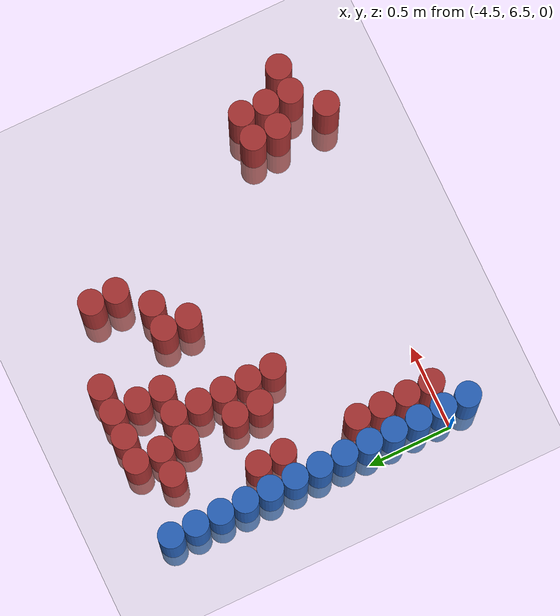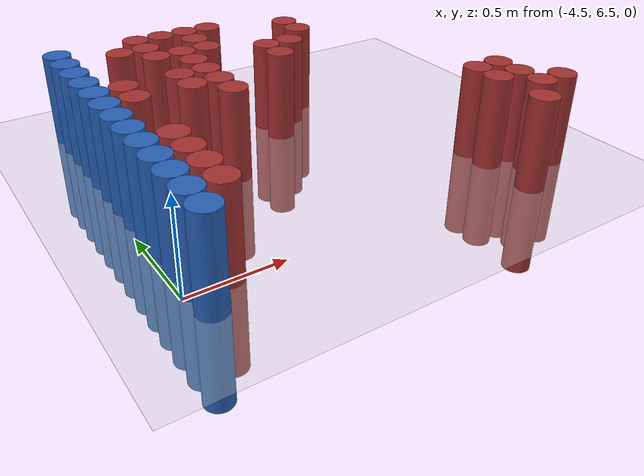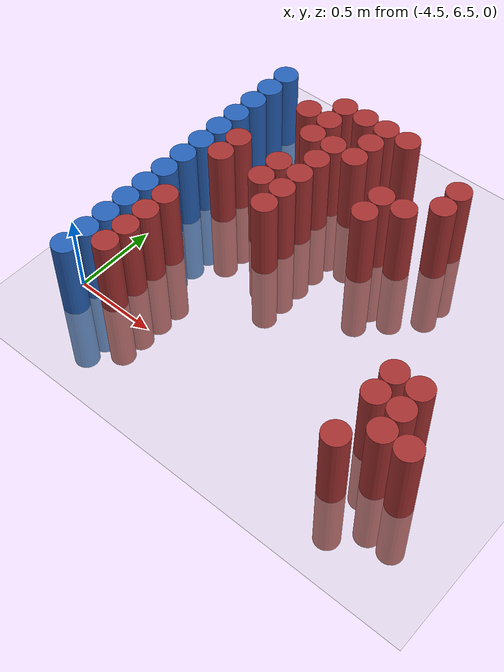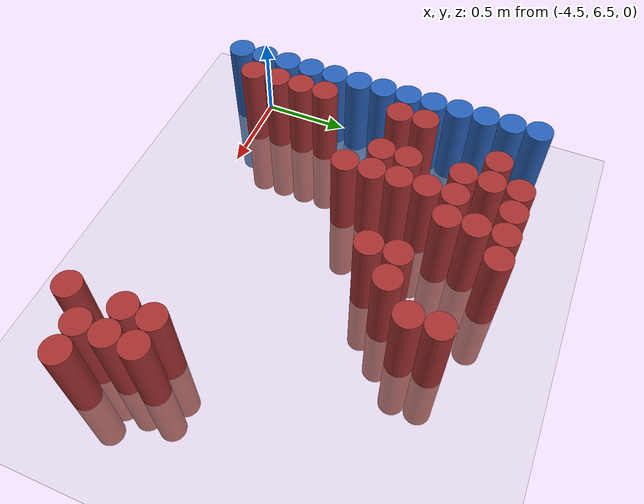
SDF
<sdf version="1.6">
 <world name="default">
  <model name="ground_plane">
   <static>1</static>
   <link name="link">
    <collision name="collision">
     <geometry><plane><normal>0 0 1</normal><size>100 100</size></plane></geometry>
     <surface><friction><ode><mu>100</mu><mu2>50</mu2></ode></friction></surface>
    </collision>
    <visual name="visual">
     <cast_shadows>0</cast_shadows>
     <geometry><plane><normal>0 0 1</normal><size>100 100</size></plane></geometry>
     <material>
      <script><uri>file://media/materials/scripts/gazebo.material</uri><name>Gazebo/Grey</name></script>
     </material>
    </visual>
   </link>
  </model>
  <model name="unit_cylinder_104">
   <static>1</static>
   <pose>-4.425000 6.375000 0.000000 0.000000 0.000000 0.000000</pose>
   <link name="link">
    <inertial>
     <mass>1</mass>
     <inertia><ixx>0.145833</ixx><ixy>0</ixy><ixz>0</ixz><iyy>0.145833</iyy><iyz>0</iyz><izz>0.125</izz></inertia>
    </inertial>
    <collision name="collision">
     <geometry><cylinder><radius>0.075000</radius><length>1</length></cylinder></geometry>
    </collision>
    <visual name="visual">
     <geometry><cylinder><radius>0.075000</radius><length>1</length></cylinder></geometry>
     <material>
      <ambient>0.152000 0.379000 0.720000 1</ambient>
      <diffuse>0.152000 0.379000 0.720000 1</diffuse>
     </material>
     <material>
      <script><name>Gazebo/Grey</name><uri>file://media/materials/scripts/gazebo.material</uri></script>
     </material>
    </visual>
   </link>
  </model>
  <model name="unit_cylinder_105">
   <static>1</static>
   <pose>-4.425000 6.525000 0.000000 0.000000 0.000000 0.000000</pose>
   <link name="link">
    <inertial>
     <mass>1</mass>
     <inertia><ixx>0.145833</ixx><ixy>0</ixy><ixz>0</ixz><iyy>0.145833</iyy><iyz>0</iyz><izz>0.125</izz></inertia>
    </inertial>
    <collision name="collision">
     <geometry><cylinder><radius>0.075000</radius><length>1</length></cylinder></geometry>
    </collision>
    <visual name="visual">
     <geometry><cylinder><radius>0.075000</radius><length>1</length></cylinder></geometry>
     <material>
      <ambient>0.152000 0.379000 0.720000 1</ambient>
      <diffuse>0.152000 0.379000 0.720000 1</diffuse>
     </material>
     <material>
      <script><name>Gazebo/Grey</name><uri>file://media/materials/scripts/gazebo.material</uri></script>
     </material>
    </visual>
   </link>
  </model>
  <model name="unit_cylinder_106">
   <static>1</static>
   <pose>-4.425000 6.675000 0.000000 0.000000 0.000000 0.000000</pose>
   <link name="link">
    <inertial>
     <mass>1</mass>
     <inertia><ixx>0.145833</ixx><ixy>0</ixy><ixz>0</ixz><iyy>0.145833</iyy><iyz>0</iyz><izz>0.125</izz></inertia>
    </inertial>
    <collision name="collision">
     <geometry><cylinder><radius>0.075000</radius><length>1</length></cylinder></geometry>
    </collision>
    <visual name="visual">
     <geometry><cylinder><radius>0.075000</radius><length>1</length></cylinder></geometry>
     <material>
      <ambient>0.152000 0.379000 0.720000 1</ambient>
      <diffuse>0.152000 0.379000 0.720000 1</diffuse>
     </material>
     <material>
      <script><name>Gazebo/Grey</name><uri>file://media/materials/scripts/gazebo.material</uri></script>
     </material>
    </visual>
   </link>
  </model>
  <model name="unit_cylinder_107">
   <static>1</static>
   <pose>-4.425000 6.825000 0.000000 0.000000 0.000000 0.000000</pose>
   <link name="link">
    <inertial>
     <mass>1</mass>
     <inertia><ixx>0.145833</ixx><ixy>0</ixy><ixz>0</ixz><iyy>0.145833</iyy><iyz>0</iyz><izz>0.125</izz></inertia>
    </inertial>
    <collision name="collision">
     <geometry><cylinder><radius>0.075000</radius><length>1</length></cylinder></geometry>
    </collision>
    <visual name="visual">
     <geometry><cylinder><radius>0.075000</radius><length>1</length></cylinder></geometry>
     <material>
      <ambient>0.152000 0.379000 0.720000 1</ambient>
      <diffuse>0.152000 0.379000 0.720000 1</diffuse>
     </material>
     <material>
      <script><name>Gazebo/Grey</name><uri>file://media/materials/scripts/gazebo.material</uri></script>
     </material>
    </visual>
   </link>
  </model>
  <model name="unit_cylinder_108">
   <static>1</static>
   <pose>-4.425000 6.975000 0.000000 0.000000 0.000000 0.000000</pose>
   <link name="link">
    <inertial>
     <mass>1</mass>
     <inertia><ixx>0.145833</ixx><ixy>0</ixy><ixz>0</ixz><iyy>0.145833</iyy><iyz>0</iyz><izz>0.125</izz></inertia>
    </inertial>
    <collision name="collision">
     <geometry><cylinder><radius>0.075000</radius><length>1</length></cylinder></geometry>
    </collision>
    <visual name="visual">
     <geometry><cylinder><radius>0.075000</radius><length>1</length></cylinder></geometry>
     <material>
      <ambient>0.152000 0.379000 0.720000 1</ambient>
      <diffuse>0.152000 0.379000 0.720000 1</diffuse>
     </material>
     <material>
      <script><name>Gazebo/Grey</name><uri>file://media/materials/scripts/gazebo.material</uri></script>
     </material>
    </visual>
   </link>
  </model>
  <model name="unit_cylinder_109">
   <static>1</static>
   <pose>-4.425000 7.125000 0.000000 0.000000 0.000000 0.000000</pose>
   <link name="link">
    <inertial>
     <mass>1</mass>
     <inertia><ixx>0.145833</ixx><ixy>0</ixy><ixz>0</ixz><iyy>0.145833</iyy><iyz>0</iyz><izz>0.125</izz></inertia>
    </inertial>
    <collision name="collision">
     <geometry><cylinder><radius>0.075000</radius><length>1</length></cylinder></geometry>
    </collision>
    <visual name="visual">
     <geometry><cylinder><radius>0.075000</radius><length>1</length></cylinder></geometry>
     <material>
      <ambient>0.152000 0.379000 0.720000 1</ambient>
      <diffuse>0.152000 0.379000 0.720000 1</diffuse>
     </material>
     <material>
      <script><name>Gazebo/Grey</name><uri>file://media/materials/scripts/gazebo.material</uri></script>
     </material>
    </visual>
   </link>
  </model>
  <model name="unit_cylinder_110">
   <static>1</static>
   <pose>-4.425000 7.275000 0.000000 0.000000 0.000000 0.000000</pose>
   <link name="link">
    <inertial>
     <mass>1</mass>
     <inertia><ixx>0.145833</ixx><ixy>0</ixy><ixz>0</ixz><iyy>0.145833</iyy><iyz>0</iyz><izz>0.125</izz></inertia>
    </inertial>
    <collision name="collision">
     <geometry><cylinder><radius>0.075000</radius><length>1</length></cylinder></geometry>
    </collision>
    <visual name="visual">
     <geometry><cylinder><radius>0.075000</radius><length>1</length></cylinder></geometry>
     <material>
      <ambient>0.152000 0.379000 0.720000 1</ambient>
      <diffuse>0.152000 0.379000 0.720000 1</diffuse>
     </material>
     <material>
      <script><name>Gazebo/Grey</name><uri>file://media/materials/scripts/gazebo.material</uri></script>
     </material>
    </visual>
   </link>
  </model>
  <model name="unit_cylinder_111">
   <static>1</static>
   <pose>-4.425000 7.425000 0.000000 0.000000 0.000000 0.000000</pose>
   <link name="link">
    <inertial>
     <mass>1</mass>
     <inertia><ixx>0.145833</ixx><ixy>0</ixy><ixz>0</ixz><iyy>0.145833</iyy><iyz>0</iyz><izz>0.125</izz></inertia>
    </inertial>
    <collision name="collision">
     <geometry><cylinder><radius>0.075000</radius><length>1</length></cylinder></geometry>
    </collision>
    <visual name="visual">
     <geometry><cylinder><radius>0.075000</radius><length>1</length></cylinder></geometry>
     <material>
      <ambient>0.152000 0.379000 0.720000 1</ambient>
      <diffuse>0.152000 0.379000 0.720000 1</diffuse>
     </material>
     <material>
      <script><name>Gazebo/Grey</name><uri>file://media/materials/scripts/gazebo.material</uri></script>
     </material>
    </visual>
   </link>
  </model>
  <model name="unit_cylinder_112">
   <static>1</static>
   <pose>-4.425000 7.575000 0.000000 0.000000 0.000000 0.000000</pose>
   <link name="link">
    <inertial>
     <mass>1</mass>
     <inertia><ixx>0.145833</ixx><ixy>0</ixy><ixz>0</ixz><iyy>0.145833</iyy><iyz>0</iyz><izz>0.125</izz></inertia>
    </inertial>
    <collision name="collision">
     <geometry><cylinder><radius>0.075000</radius><length>1</length></cylinder></geometry>
    </collision>
    <visual name="visual">
     <geometry><cylinder><radius>0.075000</radius><length>1</length></cylinder></geometry>
     <material>
      <ambient>0.152000 0.379000 0.720000 1</ambient>
      <diffuse>0.152000 0.379000 0.720000 1</diffuse>
     </material>
     <material>
      <script><name>Gazebo/Grey</name><uri>file://media/materials/scripts/gazebo.material</uri></script>
     </material>
    </visual>
   </link>
  </model>
  <model name="unit_cylinder_113">
   <static>1</static>
   <pose>-4.425000 7.725000 0.000000 0.000000 0.000000 0.000000</pose>
   <link name="link">
    <inertial>
     <mass>1</mass>
     <inertia><ixx>0.145833</ixx><ixy>0</ixy><ixz>0</ixz><iyy>0.145833</iyy><iyz>0</iyz><izz>0.125</izz></inertia>
    </inertial>
    <collision name="collision">
     <geometry><cylinder><radius>0.075000</radius><length>1</length></cylinder></geometry>
    </collision>
    <visual name="visual">
     <geometry><cylinder><radius>0.075000</radius><length>1</length></cylinder></geometry>
     <material>
      <ambient>0.152000 0.379000 0.720000 1</ambient>
      <diffuse>0.152000 0.379000 0.720000 1</diffuse>
     </material>
     <material>
      <script><name>Gazebo/Grey</name><uri>file://media/materials/scripts/gazebo.material</uri></script>
     </material>
    </visual>
   </link>
  </model>
  <model name="unit_cylinder_114">
   <static>1</static>
   <pose>-4.425000 7.875000 0.000000 0.000000 0.000000 0.000000</pose>
   <link name="link">
    <inertial>
     <mass>1</mass>
     <inertia><ixx>0.145833</ixx><ixy>0</ixy><ixz>0</ixz><iyy>0.145833</iyy><iyz>0</iyz><izz>0.125</izz></inertia>
    </inertial>
    <collision name="collision">
     <geometry><cylinder><radius>0.075000</radius><length>1</length></cylinder></geometry>
    </collision>
    <visual name="visual">
     <geometry><cylinder><radius>0.075000</radius><length>1</length></cylinder></geometry>
     <material>
      <ambient>0.152000 0.379000 0.720000 1</ambient>
      <diffuse>0.152000 0.379000 0.720000 1</diffuse>
     </material>
     <material>
      <script><name>Gazebo/Grey</name><uri>file://media/materials/scripts/gazebo.material</uri></script>
     </material>
    </visual>
   </link>
  </model>
  <model name="unit_cylinder_115">
   <static>1</static>
   <pose>-4.425000 8.025000 0.000000 0.000000 0.000000 0.000000</pose>
   <link name="link">
    <inertial>
     <mass>1</mass>
     <inertia><ixx>0.145833</ixx><ixy>0</ixy><ixz>0</ixz><iyy>0.145833</iyy><iyz>0</iyz><izz>0.125</izz></inertia>
    </inertial>
    <collision name="collision">
     <geometry><cylinder><radius>0.075000</radius><length>1</length></cylinder></geometry>
    </collision>
    <visual name="visual">
     <geometry><cylinder><radius>0.075000</radius><length>1</length></cylinder></geometry>
     <material>
      <ambient>0.152000 0.379000 0.720000 1</ambient>
      <diffuse>0.152000 0.379000 0.720000 1</diffuse>
     </material>
     <material>
      <script><name>Gazebo/Grey</name><uri>file://media/materials/scripts/gazebo.material</uri></script>
     </material>
    </visual>
   </link>
  </model>
  <model name="unit_cylinder_116">
   <static>1</static>
   <pose>-4.425000 8.175000 0.000000 0.000000 0.000000 0.000000</pose>
   <link name="link">
    <inertial>
     <mass>1</mass>
     <inertia><ixx>0.145833</ixx><ixy>0</ixy><ixz>0</ixz><iyy>0.145833</iyy><iyz>0</iyz><izz>0.125</izz></inertia>
    </inertial>
    <collision name="collision">
     <geometry><cylinder><radius>0.075000</radius><length>1</length></cylinder></geometry>
    </collision>
    <visual name="visual">
     <geometry><cylinder><radius>0.075000</radius><length>1</length></cylinder></geometry>
     <material>
      <ambient>0.152000 0.379000 0.720000 1</ambient>
      <diffuse>0.152000 0.379000 0.720000 1</diffuse>
     </material>
     <material>
      <script><name>Gazebo/Grey</name><uri>file://media/materials/scripts/gazebo.material</uri></script>
     </material>
    </visual>
   </link>
  </model>
  <model name="unit_cylinder_129">
   <static>1</static>
   <pose>-4.275000 6.525000 0.000000 0.000000 0.000000 0.000000</pose>
   <link name="link">
    <inertial>
     <mass>1</mass>
     <inertia><ixx>0.145833</ixx><ixy>0</ixy><ixz>0</ixz><iyy>0.145833</iyy><iyz>0</iyz><izz>0.125</izz></inertia>
    </inertial>
    <collision name="collision">
     <geometry><cylinder><radius>0.075000</radius><length>1</length></cylinder></geometry>
    </collision>
    <visual name="visual">
     <geometry><cylinder><radius>0.075000</radius><length>1</length></cylinder></geometry>
     <material>
      <ambient>0.648000 0.192000 0.192000 1</ambient>
      <diffuse>0.648000 0.192000 0.192000 1</diffuse>
     </material>
     <material>
      <script><name>Gazebo/Grey</name><uri>file://media/materials/scripts/gazebo.material</uri></script>
     </material>
    </visual>
   </link>
  </model>
  <model name="unit_cylinder_130">
   <static>1</static>
   <pose>-4.275000 6.675000 0.000000 0.000000 0.000000 0.000000</pose>
   <link name="link">
    <inertial>
     <mass>1</mass>
     <inertia><ixx>0.145833</ixx><ixy>0</ixy><ixz>0</ixz><iyy>0.145833</iyy><iyz>0</iyz><izz>0.125</izz></inertia>
    </inertial>
    <collision name="collision">
     <geometry><cylinder><radius>0.075000</radius><length>1</length></cylinder></geometry>
    </collision>
    <visual name="visual">
     <geometry><cylinder><radius>0.075000</radius><length>1</length></cylinder></geometry>
     <material>
      <ambient>0.648000 0.192000 0.192000 1</ambient>
      <diffuse>0.648000 0.192000 0.192000 1</diffuse>
     </material>
     <material>
      <script><name>Gazebo/Grey</name><uri>file://media/materials/scripts/gazebo.material</uri></script>
     </material>
    </visual>
   </link>
  </model>
  <model name="unit_cylinder_131">
   <static>1</static>
   <pose>-4.275000 6.825000 0.000000 0.000000 0.000000 0.000000</pose>
   <link name="link">
    <inertial>
     <mass>1</mass>
     <inertia><ixx>0.145833</ixx><ixy>0</ixy><ixz>0</ixz><iyy>0.145833</iyy><iyz>0</iyz><izz>0.125</izz></inertia>
    </inertial>
    <collision name="collision">
     <geometry><cylinder><radius>0.075000</radius><length>1</length></cylinder></geometry>
    </collision>
    <visual name="visual">
     <geometry><cylinder><radius>0.075000</radius><length>1</length></cylinder></geometry>
     <material>
      <ambient>0.648000 0.192000 0.192000 1</ambient>
      <diffuse>0.648000 0.192000 0.192000 1</diffuse>
     </material>
     <material>
      <script><name>Gazebo/Grey</name><uri>file://media/materials/scripts/gazebo.material</uri></script>
     </material>
    </visual>
   </link>
  </model>
  <model name="unit_cylinder_132">
   <static>1</static>
   <pose>-4.275000 6.975000 0.000000 0.000000 0.000000 0.000000</pose>
   <link name="link">
    <inertial>
     <mass>1</mass>
     <inertia><ixx>0.145833</ixx><ixy>0</ixy><ixz>0</ixz><iyy>0.145833</iyy><iyz>0</iyz><izz>0.125</izz></inertia>
    </inertial>
    <collision name="collision">
     <geometry><cylinder><radius>0.075000</radius><length>1</length></cylinder></geometry>
    </collision>
    <visual name="visual">
     <geometry><cylinder><radius>0.075000</radius><length>1</length></cylinder></geometry>
     <material>
      <ambient>0.648000 0.192000 0.192000 1</ambient>
      <diffuse>0.648000 0.192000 0.192000 1</diffuse>
     </material>
     <material>
      <script><name>Gazebo/Grey</name><uri>file://media/materials/scripts/gazebo.material</uri></script>
     </material>
    </visual>
   </link>
  </model>
  <model name="unit_cylinder_133">
   <static>1</static>
   <pose>-4.275000 7.425000 0.000000 0.000000 0.000000 0.000000</pose>
   <link name="link">
    <inertial>
     <mass>1</mass>
     <inertia><ixx>0.145833</ixx><ixy>0</ixy><ixz>0</ixz><iyy>0.145833</iyy><iyz>0</iyz><izz>0.125</izz></inertia>
    </inertial>
    <collision name="collision">
     <geometry><cylinder><radius>0.075000</radius><length>1</length></cylinder></geometry>
    </collision>
    <visual name="visual">
     <geometry><cylinder><radius>0.075000</radius><length>1</length></cylinder></geometry>
     <material>
      <ambient>0.648000 0.192000 0.192000 1</ambient>
      <diffuse>0.648000 0.192000 0.192000 1</diffuse>
     </material>
     <material>
      <script><name>Gazebo/Grey</name><uri>file://media/materials/scripts/gazebo.material</uri></script>
     </material>
    </visual>
   </link>
  </model>
  <model name="unit_cylinder_134">
   <static>1</static>
   <pose>-4.275000 7.575000 0.000000 0.000000 0.000000 0.000000</pose>
   <link name="link">
    <inertial>
     <mass>1</mass>
     <inertia><ixx>0.145833</ixx><ixy>0</ixy><ixz>0</ixz><iyy>0.145833</iyy><iyz>0</iyz><izz>0.125</izz></inertia>
    </inertial>
    <collision name="collision">
     <geometry><cylinder><radius>0.075000</radius><length>1</length></cylinder></geometry>
    </collision>
    <visual name="visual">
     <geometry><cylinder><radius>0.075000</radius><length>1</length></cylinder></geometry>
     <material>
      <ambient>0.648000 0.192000 0.192000 1</ambient>
      <diffuse>0.648000 0.192000 0.192000 1</diffuse>
     </material>
     <material>
      <script><name>Gazebo/Grey</name><uri>file://media/materials/scripts/gazebo.material</uri></script>
     </material>
    </visual>
   </link>
  </model>
  <model name="unit_cylinder_140">
   <static>1</static>
   <pose>-4.125000 8.025000 0.000000 0.000000 0.000000 0.000000</pose>
   <link name="link">
    <inertial>
     <mass>1</mass>
     <inertia><ixx>0.145833</ixx><ixy>0</ixy><ixz>0</ixz><iyy>0.145833</iyy><iyz>0</iyz><izz>0.125</izz></inertia>
    </inertial>
    <collision name="collision">
     <geometry><cylinder><radius>0.075000</radius><length>1</length></cylinder></geometry>
    </collision>
    <visual name="visual">
     <geometry><cylinder><radius>0.075000</radius><length>1</length></cylinder></geometry>
     <material>
      <ambient>0.648000 0.192000 0.192000 1</ambient>
      <diffuse>0.648000 0.192000 0.192000 1</diffuse>
     </material>
     <material>
      <script><name>Gazebo/Grey</name><uri>file://media/materials/scripts/gazebo.material</uri></script>
     </material>
    </visual>
   </link>
  </model>
  <model name="unit_cylinder_143">
   <static>1</static>
   <pose>-3.975000 7.425000 0.000000 0.000000 0.000000 0.000000</pose>
   <link name="link">
    <inertial>
     <mass>1</mass>
     <inertia><ixx>0.145833</ixx><ixy>0</ixy><ixz>0</ixz><iyy>0.145833</iyy><iyz>0</iyz><izz>0.125</izz></inertia>
    </inertial>
    <collision name="collision">
     <geometry><cylinder><radius>0.075000</radius><length>1</length></cylinder></geometry>
    </collision>
    <visual name="visual">
     <geometry><cylinder><radius>0.075000</radius><length>1</length></cylinder></geometry>
     <material>
      <ambient>0.648000 0.192000 0.192000 1</ambient>
      <diffuse>0.648000 0.192000 0.192000 1</diffuse>
     </material>
     <material>
      <script><name>Gazebo/Grey</name><uri>file://media/materials/scripts/gazebo.material</uri></script>
     </material>
    </visual>
   </link>
  </model>
  <model name="unit_cylinder_144">
   <static>1</static>
   <pose>-3.975000 7.575000 0.000000 0.000000 0.000000 0.000000</pose>
   <link name="link">
    <inertial>
     <mass>1</mass>
     <inertia><ixx>0.145833</ixx><ixy>0</ixy><ixz>0</ixz><iyy>0.145833</iyy><iyz>0</iyz><izz>0.125</izz></inertia>
    </inertial>
    <collision name="collision">
     <geometry><cylinder><radius>0.075000</radius><length>1</length></cylinder></geometry>
    </collision>
    <visual name="visual">
     <geometry><cylinder><radius>0.075000</radius><length>1</length></cylinder></geometry>
     <material>
      <ambient>0.648000 0.192000 0.192000 1</ambient>
      <diffuse>0.648000 0.192000 0.192000 1</diffuse>
     </material>
     <material>
      <script><name>Gazebo/Grey</name><uri>file://media/materials/scripts/gazebo.material</uri></script>
     </material>
    </visual>
   </link>
  </model>
  <model name="unit_cylinder_145">
   <static>1</static>
   <pose>-3.975000 7.875000 0.000000 0.000000 0.000000 0.000000</pose>
   <link name="link">
    <inertial>
     <mass>1</mass>
     <inertia><ixx>0.145833</ixx><ixy>0</ixy><ixz>0</ixz><iyy>0.145833</iyy><iyz>0</iyz><izz>0.125</izz></inertia>
    </inertial>
    <collision name="collision">
     <geometry><cylinder><radius>0.075000</radius><length>1</length></cylinder></geometry>
    </collision>
    <visual name="visual">
     <geometry><cylinder><radius>0.075000</radius><length>1</length></cylinder></geometry>
     <material>
      <ambient>0.648000 0.192000 0.192000 1</ambient>
      <diffuse>0.648000 0.192000 0.192000 1</diffuse>
     </material>
     <material>
      <script><name>Gazebo/Grey</name><uri>file://media/materials/scripts/gazebo.material</uri></script>
     </material>
    </visual>
   </link>
  </model>
  <model name="unit_cylinder_146">
   <static>1</static>
   <pose>-3.975000 8.025000 0.000000 0.000000 0.000000 0.000000</pose>
   <link name="link">
    <inertial>
     <mass>1</mass>
     <inertia><ixx>0.145833</ixx><ixy>0</ixy><ixz>0</ixz><iyy>0.145833</iyy><iyz>0</iyz><izz>0.125</izz></inertia>
    </inertial>
    <collision name="collision">
     <geometry><cylinder><radius>0.075000</radius><length>1</length></cylinder></geometry>
    </collision>
    <visual name="visual">
     <geometry><cylinder><radius>0.075000</radius><length>1</length></cylinder></geometry>
     <material>
      <ambient>0.648000 0.192000 0.192000 1</ambient>
      <diffuse>0.648000 0.192000 0.192000 1</diffuse>
     </material>
     <material>
      <script><name>Gazebo/Grey</name><uri>file://media/materials/scripts/gazebo.material</uri></script>
     </material>
    </visual>
   </link>
  </model>
  <model name="unit_cylinder_147">
   <static>1</static>
   <pose>-3.975000 8.175000 0.000000 0.000000 0.000000 0.000000</pose>
   <link name="link">
    <inertial>
     <mass>1</mass>
     <inertia><ixx>0.145833</ixx><ixy>0</ixy><ixz>0</ixz><iyy>0.145833</iyy><iyz>0</iyz><izz>0.125</izz></inertia>
    </inertial>
    <collision name="collision">
     <geometry><cylinder><radius>0.075000</radius><length>1</length></cylinder></geometry>
    </collision>
    <visual name="visual">
     <geometry><cylinder><radius>0.075000</radius><length>1</length></cylinder></geometry>
     <material>
      <ambient>0.648000 0.192000 0.192000 1</ambient>
      <diffuse>0.648000 0.192000 0.192000 1</diffuse>
     </material>
     <material>
      <script><name>Gazebo/Grey</name><uri>file://media/materials/scripts/gazebo.material</uri></script>
     </material>
    </visual>
   </link>
  </model>
  <model name="unit_cylinder_153">
   <static>1</static>
   <pose>-3.825000 7.275000 0.000000 0.000000 0.000000 0.000000</pose>
   <link name="link">
    <inertial>
     <mass>1</mass>
     <inertia><ixx>0.145833</ixx><ixy>0</ixy><ixz>0</ixz><iyy>0.145833</iyy><iyz>0</iyz><izz>0.125</izz></inertia>
    </inertial>
    <collision name="collision">
     <geometry><cylinder><radius>0.075000</radius><length>1</length></cylinder></geometry>
    </collision>
    <visual name="visual">
     <geometry><cylinder><radius>0.075000</radius><length>1</length></cylinder></geometry>
     <material>
      <ambient>0.648000 0.192000 0.192000 1</ambient>
      <diffuse>0.648000 0.192000 0.192000 1</diffuse>
     </material>
     <material>
      <script><name>Gazebo/Grey</name><uri>file://media/materials/scripts/gazebo.material</uri></script>
     </material>
    </visual>
   </link>
  </model>
  <model name="unit_cylinder_154">
   <static>1</static>
   <pose>-3.825000 7.425000 0.000000 0.000000 0.000000 0.000000</pose>
   <link name="link">
    <inertial>
     <mass>1</mass>
     <inertia><ixx>0.145833</ixx><ixy>0</ixy><ixz>0</ixz><iyy>0.145833</iyy><iyz>0</iyz><izz>0.125</izz></inertia>
    </inertial>
    <collision name="collision">
     <geometry><cylinder><radius>0.075000</radius><length>1</length></cylinder></geometry>
    </collision>
    <visual name="visual">
     <geometry><cylinder><radius>0.075000</radius><length>1</length></cylinder></geometry>
     <material>
      <ambient>0.648000 0.192000 0.192000 1</ambient>
      <diffuse>0.648000 0.192000 0.192000 1</diffuse>
     </material>
     <material>
      <script><name>Gazebo/Grey</name><uri>file://media/materials/scripts/gazebo.material</uri></script>
     </material>
    </visual>
   </link>
  </model>
  <model name="unit_cylinder_155">
   <static>1</static>
   <pose>-3.825000 7.575000 0.000000 0.000000 0.000000 0.000000</pose>
   <link name="link">
    <inertial>
     <mass>1</mass>
     <inertia><ixx>0.145833</ixx><ixy>0</ixy><ixz>0</ixz><iyy>0.145833</iyy><iyz>0</iyz><izz>0.125</izz></inertia>
    </inertial>
    <collision name="collision">
     <geometry><cylinder><radius>0.075000</radius><length>1</length></cylinder></geometry>
    </collision>
    <visual name="visual">
     <geometry><cylinder><radius>0.075000</radius><length>1</length></cylinder></geometry>
     <material>
      <ambient>0.648000 0.192000 0.192000 1</ambient>
      <diffuse>0.648000 0.192000 0.192000 1</diffuse>
     </material>
     <material>
      <script><name>Gazebo/Grey</name><uri>file://media/materials/scripts/gazebo.material</uri></script>
     </material>
    </visual>
   </link>
  </model>
  <model name="unit_cylinder_156">
   <static>1</static>
   <pose>-3.825000 7.725000 0.000000 0.000000 0.000000 0.000000</pose>
   <link name="link">
    <inertial>
     <mass>1</mass>
     <inertia><ixx>0.145833</ixx><ixy>0</ixy><ixz>0</ixz><iyy>0.145833</iyy><iyz>0</iyz><izz>0.125</izz></inertia>
    </inertial>
    <collision name="collision">
     <geometry><cylinder><radius>0.075000</radius><length>1</length></cylinder></geometry>
    </collision>
    <visual name="visual">
     <geometry><cylinder><radius>0.075000</radius><length>1</length></cylinder></geometry>
     <material>
      <ambient>0.648000 0.192000 0.192000 1</ambient>
      <diffuse>0.648000 0.192000 0.192000 1</diffuse>
     </material>
     <material>
      <script><name>Gazebo/Grey</name><uri>file://media/materials/scripts/gazebo.material</uri></script>
     </material>
    </visual>
   </link>
  </model>
  <model name="unit_cylinder_157">
   <static>1</static>
   <pose>-3.825000 7.875000 0.000000 0.000000 0.000000 0.000000</pose>
   <link name="link">
    <inertial>
     <mass>1</mass>
     <inertia><ixx>0.145833</ixx><ixy>0</ixy><ixz>0</ixz><iyy>0.145833</iyy><iyz>0</iyz><izz>0.125</izz></inertia>
    </inertial>
    <collision name="collision">
     <geometry><cylinder><radius>0.075000</radius><length>1</length></cylinder></geometry>
    </collision>
    <visual name="visual">
     <geometry><cylinder><radius>0.075000</radius><length>1</length></cylinder></geometry>
     <material>
      <ambient>0.648000 0.192000 0.192000 1</ambient>
      <diffuse>0.648000 0.192000 0.192000 1</diffuse>
     </material>
     <material>
      <script><name>Gazebo/Grey</name><uri>file://media/materials/scripts/gazebo.material</uri></script>
     </material>
    </visual>
   </link>
  </model>
  <model name="unit_cylinder_158">
   <static>1</static>
   <pose>-3.825000 8.175000 0.000000 0.000000 0.000000 0.000000</pose>
   <link name="link">
    <inertial>
     <mass>1</mass>
     <inertia><ixx>0.145833</ixx><ixy>0</ixy><ixz>0</ixz><iyy>0.145833</iyy><iyz>0</iyz><izz>0.125</izz></inertia>
    </inertial>
    <collision name="collision">
     <geometry><cylinder><radius>0.075000</radius><length>1</length></cylinder></geometry>
    </collision>
    <visual name="visual">
     <geometry><cylinder><radius>0.075000</radius><length>1</length></cylinder></geometry>
     <material>
      <ambient>0.648000 0.192000 0.192000 1</ambient>
      <diffuse>0.648000 0.192000 0.192000 1</diffuse>
     </material>
     <material>
      <script><name>Gazebo/Grey</name><uri>file://media/materials/scripts/gazebo.material</uri></script>
     </material>
    </visual>
   </link>
  </model>
  <model name="unit_cylinder_160">
   <static>1</static>
   <pose>-3.675000 7.875000 0.000000 0.000000 0.000000 0.000000</pose>
   <link name="link">
    <inertial>
     <mass>1</mass>
     <inertia><ixx>0.145833</ixx><ixy>0</ixy><ixz>0</ixz><iyy>0.145833</iyy><iyz>0</iyz><izz>0.125</izz></inertia>
    </inertial>
    <collision name="collision">
     <geometry><cylinder><radius>0.075000</radius><length>1</length></cylinder></geometry>
    </collision>
    <visual name="visual">
     <geometry><cylinder><radius>0.075000</radius><length>1</length></cylinder></geometry>
     <material>
      <ambient>0.648000 0.192000 0.192000 1</ambient>
      <diffuse>0.648000 0.192000 0.192000 1</diffuse>
     </material>
     <material>
      <script><name>Gazebo/Grey</name><uri>file://media/materials/scripts/gazebo.material</uri></script>
     </material>
    </visual>
   </link>
  </model>
  <model name="unit_cylinder_161">
   <static>1</static>
   <pose>-3.675000 8.025000 0.000000 0.000000 0.000000 0.000000</pose>
   <link name="link">
    <inertial>
     <mass>1</mass>
     <inertia><ixx>0.145833</ixx><ixy>0</ixy><ixz>0</ixz><iyy>0.145833</iyy><iyz>0</iyz><izz>0.125</izz></inertia>
    </inertial>
    <collision name="collision">
     <geometry><cylinder><radius>0.075000</radius><length>1</length></cylinder></geometry>
    </collision>
    <visual name="visual">
     <geometry><cylinder><radius>0.075000</radius><length>1</length></cylinder></geometry>
     <material>
      <ambient>0.648000 0.192000 0.192000 1</ambient>
      <diffuse>0.648000 0.192000 0.192000 1</diffuse>
     </material>
     <material>
      <script><name>Gazebo/Grey</name><uri>file://media/materials/scripts/gazebo.material</uri></script>
     </material>
    </visual>
   </link>
  </model>
  <model name="unit_cylinder_162">
   <static>1</static>
   <pose>-3.675000 8.175000 0.000000 0.000000 0.000000 0.000000</pose>
   <link name="link">
    <inertial>
     <mass>1</mass>
     <inertia><ixx>0.145833</ixx><ixy>0</ixy><ixz>0</ixz><iyy>0.145833</iyy><iyz>0</iyz><izz>0.125</izz></inertia>
    </inertial>
    <collision name="collision">
     <geometry><cylinder><radius>0.075000</radius><length>1</length></cylinder></geometry>
    </collision>
    <visual name="visual">
     <geometry><cylinder><radius>0.075000</radius><length>1</length></cylinder></geometry>
     <material>
      <ambient>0.648000 0.192000 0.192000 1</ambient>
      <diffuse>0.648000 0.192000 0.192000 1</diffuse>
     </material>
     <material>
      <script><name>Gazebo/Grey</name><uri>file://media/materials/scripts/gazebo.material</uri></script>
     </material>
    </visual>
   </link>
  </model>
  <model name="unit_cylinder_165">
   <static>1</static>
   <pose>-3.525000 8.175000 0.000000 0.000000 0.000000 0.000000</pose>
   <link name="link">
    <inertial>
     <mass>1</mass>
     <inertia><ixx>0.145833</ixx><ixy>0</ixy><ixz>0</ixz><iyy>0.145833</iyy><iyz>0</iyz><izz>0.125</izz></inertia>
    </inertial>
    <collision name="collision">
     <geometry><cylinder><radius>0.075000</radius><length>1</length></cylinder></geometry>
    </collision>
    <visual name="visual">
     <geometry><cylinder><radius>0.075000</radius><length>1</length></cylinder></geometry>
     <material>
      <ambient>0.648000 0.192000 0.192000 1</ambient>
      <diffuse>0.648000 0.192000 0.192000 1</diffuse>
     </material>
     <material>
      <script><name>Gazebo/Grey</name><uri>file://media/materials/scripts/gazebo.material</uri></script>
     </material>
    </visual>
   </link>
  </model>
  <model name="unit_cylinder_173">
   <static>1</static>
   <pose>-3.375000 7.575000 0.000000 0.000000 0.000000 0.000000</pose>
   <link name="link">
    <inertial>
     <mass>1</mass>
     <inertia><ixx>0.145833</ixx><ixy>0</ixy><ixz>0</ixz><iyy>0.145833</iyy><iyz>0</iyz><izz>0.125</izz></inertia>
    </inertial>
    <collision name="collision">
     <geometry><cylinder><radius>0.075000</radius><length>1</length></cylinder></geometry>
    </collision>
    <visual name="visual">
     <geometry><cylinder><radius>0.075000</radius><length>1</length></cylinder></geometry>
     <material>
      <ambient>0.648000 0.192000 0.192000 1</ambient>
      <diffuse>0.648000 0.192000 0.192000 1</diffuse>
     </material>
     <material>
      <script><name>Gazebo/Grey</name><uri>file://media/materials/scripts/gazebo.material</uri></script>
     </material>
    </visual>
   </link>
  </model>
  <model name="unit_cylinder_174">
   <static>1</static>
   <pose>-3.375000 7.725000 0.000000 0.000000 0.000000 0.000000</pose>
   <link name="link">
    <inertial>
     <mass>1</mass>
     <inertia><ixx>0.145833</ixx><ixy>0</ixy><ixz>0</ixz><iyy>0.145833</iyy><iyz>0</iyz><izz>0.125</izz></inertia>
    </inertial>
    <collision name="collision">
     <geometry><cylinder><radius>0.075000</radius><length>1</length></cylinder></geometry>
    </collision>
    <visual name="visual">
     <geometry><cylinder><radius>0.075000</radius><length>1</length></cylinder></geometry>
     <material>
      <ambient>0.648000 0.192000 0.192000 1</ambient>
      <diffuse>0.648000 0.192000 0.192000 1</diffuse>
     </material>
     <material>
      <script><name>Gazebo/Grey</name><uri>file://media/materials/scripts/gazebo.material</uri></script>
     </material>
    </visual>
   </link>
  </model>
  <model name="unit_cylinder_187">
   <static>1</static>
   <pose>-3.225000 7.725000 0.000000 0.000000 0.000000 0.000000</pose>
   <link name="link">
    <inertial>
     <mass>1</mass>
     <inertia><ixx>0.145833</ixx><ixy>0</ixy><ixz>0</ixz><iyy>0.145833</iyy><iyz>0</iyz><izz>0.125</izz></inertia>
    </inertial>
    <collision name="collision">
     <geometry><cylinder><radius>0.075000</radius><length>1</length></cylinder></geometry>
    </collision>
    <visual name="visual">
     <geometry><cylinder><radius>0.075000</radius><length>1</length></cylinder></geometry>
     <material>
      <ambient>0.648000 0.192000 0.192000 1</ambient>
      <diffuse>0.648000 0.192000 0.192000 1</diffuse>
     </material>
     <material>
      <script><name>Gazebo/Grey</name><uri>file://media/materials/scripts/gazebo.material</uri></script>
     </material>
    </visual>
   </link>
  </model>
  <model name="unit_cylinder_194">
   <static>1</static>
   <pose>-3.075000 7.875000 0.000000 0.000000 0.000000 0.000000</pose>
   <link name="link">
    <inertial>
     <mass>1</mass>
     <inertia><ixx>0.145833</ixx><ixy>0</ixy><ixz>0</ixz><iyy>0.145833</iyy><iyz>0</iyz><izz>0.125</izz></inertia>
    </inertial>
    <collision name="collision">
     <geometry><cylinder><radius>0.075000</radius><length>1</length></cylinder></geometry>
    </collision>
    <visual name="visual">
     <geometry><cylinder><radius>0.075000</radius><length>1</length></cylinder></geometry>
     <material>
      <ambient>0.648000 0.192000 0.192000 1</ambient>
      <diffuse>0.648000 0.192000 0.192000 1</diffuse>
     </material>
     <material>
      <script><name>Gazebo/Grey</name><uri>file://media/materials/scripts/gazebo.material</uri></script>
     </material>
    </visual>
   </link>
  </model>
  <model name="unit_cylinder_195">
   <static>1</static>
   <pose>-3.075000 8.025000 0.000000 0.000000 0.000000 0.000000</pose>
   <link name="link">
    <inertial>
     <mass>1</mass>
     <inertia><ixx>0.145833</ixx><ixy>0</ixy><ixz>0</ixz><iyy>0.145833</iyy><iyz>0</iyz><izz>0.125</izz></inertia>
    </inertial>
    <collision name="collision">
     <geometry><cylinder><radius>0.075000</radius><length>1</length></cylinder></geometry>
    </collision>
    <visual name="visual">
     <geometry><cylinder><radius>0.075000</radius><length>1</length></cylinder></geometry>
     <material>
      <ambient>0.648000 0.192000 0.192000 1</ambient>
      <diffuse>0.648000 0.192000 0.192000 1</diffuse>
     </material>
     <material>
      <script><name>Gazebo/Grey</name><uri>file://media/materials/scripts/gazebo.material</uri></script>
     </material>
    </visual>
   </link>
  </model>
  <model name="unit_cylinder_217">
   <static>1</static>
   <pose>-2.625000 6.375000 0.000000 0.000000 0.000000 0.000000</pose>
   <link name="link">
    <inertial>
     <mass>1</mass>
     <inertia><ixx>0.145833</ixx><ixy>0</ixy><ixz>0</ixz><iyy>0.145833</iyy><iyz>0</iyz><izz>0.125</izz></inertia>
    </inertial>
    <collision name="collision">
     <geometry><cylinder><radius>0.075000</radius><length>1</length></cylinder></geometry>
    </collision>
    <visual name="visual">
     <geometry><cylinder><radius>0.075000</radius><length>1</length></cylinder></geometry>
     <material>
      <ambient>0.648000 0.192000 0.192000 1</ambient>
      <diffuse>0.648000 0.192000 0.192000 1</diffuse>
     </material>
     <material>
      <script><name>Gazebo/Grey</name><uri>file://media/materials/scripts/gazebo.material</uri></script>
     </material>
    </visual>
   </link>
  </model>
  <model name="unit_cylinder_218">
   <static>1</static>
   <pose>-2.625000 6.675000 0.000000 0.000000 0.000000 0.000000</pose>
   <link name="link">
    <inertial>
     <mass>1</mass>
     <inertia><ixx>0.145833</ixx><ixy>0</ixy><ixz>0</ixz><iyy>0.145833</iyy><iyz>0</iyz><izz>0.125</izz></inertia>
    </inertial>
    <collision name="collision">
     <geometry><cylinder><radius>0.075000</radius><length>1</length></cylinder></geometry>
    </collision>
    <visual name="visual">
     <geometry><cylinder><radius>0.075000</radius><length>1</length></cylinder></geometry>
     <material>
      <ambient>0.648000 0.192000 0.192000 1</ambient>
      <diffuse>0.648000 0.192000 0.192000 1</diffuse>
     </material>
     <material>
      <script><name>Gazebo/Grey</name><uri>file://media/materials/scripts/gazebo.material</uri></script>
     </material>
    </visual>
   </link>
  </model>
  <model name="unit_cylinder_219">
   <static>1</static>
   <pose>-2.625000 6.825000 0.000000 0.000000 0.000000 0.000000</pose>
   <link name="link">
    <inertial>
     <mass>1</mass>
     <inertia><ixx>0.145833</ixx><ixy>0</ixy><ixz>0</ixz><iyy>0.145833</iyy><iyz>0</iyz><izz>0.125</izz></inertia>
    </inertial>
    <collision name="collision">
     <geometry><cylinder><radius>0.075000</radius><length>1</length></cylinder></geometry>
    </collision>
    <visual name="visual">
     <geometry><cylinder><radius>0.075000</radius><length>1</length></cylinder></geometry>
     <material>
      <ambient>0.648000 0.192000 0.192000 1</ambient>
      <diffuse>0.648000 0.192000 0.192000 1</diffuse>
     </material>
     <material>
      <script><name>Gazebo/Grey</name><uri>file://media/materials/scripts/gazebo.material</uri></script>
     </material>
    </visual>
   </link>
  </model>
  <model name="unit_cylinder_220">
   <static>1</static>
   <pose>-2.475000 6.525000 0.000000 0.000000 0.000000 0.000000</pose>
   <link name="link">
    <inertial>
     <mass>1</mass>
     <inertia><ixx>0.145833</ixx><ixy>0</ixy><ixz>0</ixz><iyy>0.145833</iyy><iyz>0</iyz><izz>0.125</izz></inertia>
    </inertial>
    <collision name="collision">
     <geometry><cylinder><radius>0.075000</radius><length>1</length></cylinder></geometry>
    </collision>
    <visual name="visual">
     <geometry><cylinder><radius>0.075000</radius><length>1</length></cylinder></geometry>
     <material>
      <ambient>0.648000 0.192000 0.192000 1</ambient>
      <diffuse>0.648000 0.192000 0.192000 1</diffuse>
     </material>
     <material>
      <script><name>Gazebo/Grey</name><uri>file://media/materials/scripts/gazebo.material</uri></script>
     </material>
    </visual>
   </link>
  </model>
  <model name="unit_cylinder_221">
   <static>1</static>
   <pose>-2.475000 6.675000 0.000000 0.000000 0.000000 0.000000</pose>
   <link name="link">
    <inertial>
     <mass>1</mass>
     <inertia><ixx>0.145833</ixx><ixy>0</ixy><ixz>0</ixz><iyy>0.145833</iyy><iyz>0</iyz><izz>0.125</izz></inertia>
    </inertial>
    <collision name="collision">
     <geometry><cylinder><radius>0.075000</radius><length>1</length></cylinder></geometry>
    </collision>
    <visual name="visual">
     <geometry><cylinder><radius>0.075000</radius><length>1</length></cylinder></geometry>
     <material>
      <ambient>0.648000 0.192000 0.192000 1</ambient>
      <diffuse>0.648000 0.192000 0.192000 1</diffuse>
     </material>
     <material>
      <script><name>Gazebo/Grey</name><uri>file://media/materials/scripts/gazebo.material</uri></script>
     </material>
    </visual>
   </link>
  </model>
  <model name="unit_cylinder_222">
   <static>1</static>
   <pose>-2.475000 6.825000 0.000000 0.000000 0.000000 0.000000</pose>
   <link name="link">
    <inertial>
     <mass>1</mass>
     <inertia><ixx>0.145833</ixx><ixy>0</ixy><ixz>0</ixz><iyy>0.145833</iyy><iyz>0</iyz><izz>0.125</izz></inertia>
    </inertial>
    <collision name="collision">
     <geometry><cylinder><radius>0.075000</radius><length>1</length></cylinder></geometry>
    </collision>
    <visual name="visual">
     <geometry><cylinder><radius>0.075000</radius><length>1</length></cylinder></geometry>
     <material>
      <ambient>0.648000 0.192000 0.192000 1</ambient>
      <diffuse>0.648000 0.192000 0.192000 1</diffuse>
     </material>
     <material>
      <script><name>Gazebo/Grey</name><uri>file://media/materials/scripts/gazebo.material</uri></script>
     </material>
    </visual>
   </link>
  </model>
  <model name="unit_cylinder_223">
   <static>1</static>
   <pose>-2.325000 6.525000 0.000000 0.000000 0.000000 0.000000</pose>
   <link name="link">
    <inertial>
     <mass>1</mass>
     <inertia><ixx>0.145833</ixx><ixy>0</ixy><ixz>0</ixz><iyy>0.145833</iyy><iyz>0</iyz><izz>0.125</izz></inertia>
    </inertial>
    <collision name="collision">
     <geometry><cylinder><radius>0.075000</radius><length>1</length></cylinder></geometry>
    </collision>
    <visual name="visual">
     <geometry><cylinder><radius>0.075000</radius><length>1</length></cylinder></geometry>
     <material>
      <ambient>0.648000 0.192000 0.192000 1</ambient>
      <diffuse>0.648000 0.192000 0.192000 1</diffuse>
     </material>
     <material>
      <script><name>Gazebo/Grey</name><uri>file://media/materials/scripts/gazebo.material</uri></script>
     </material>
    </visual>
   </link>
  </model>
 </world>
</sdf>
